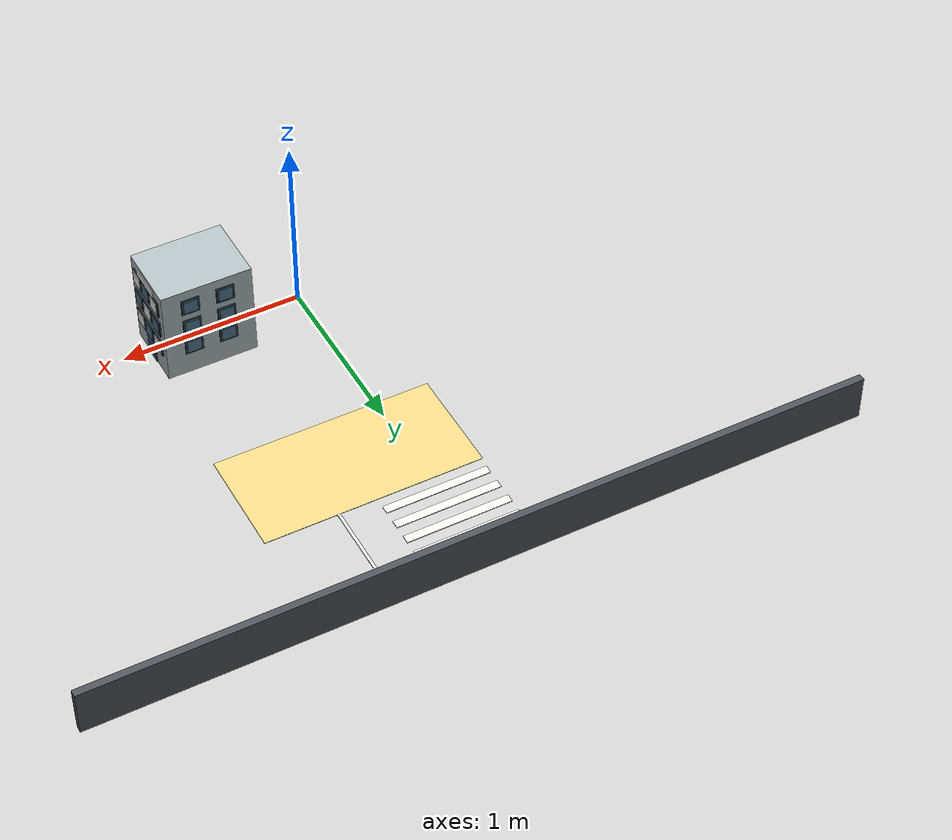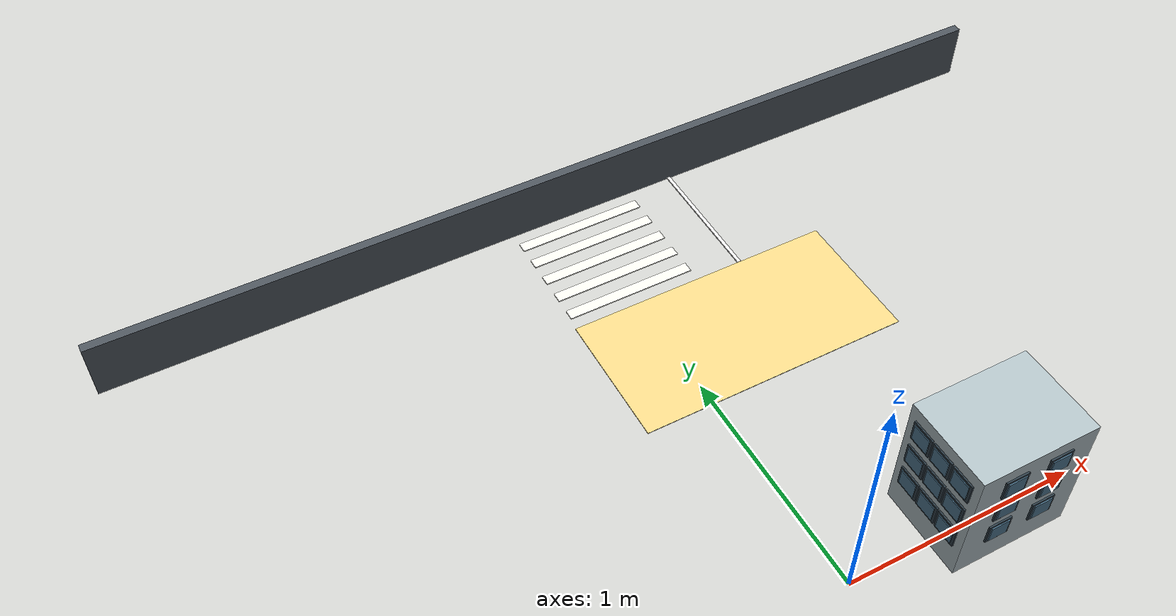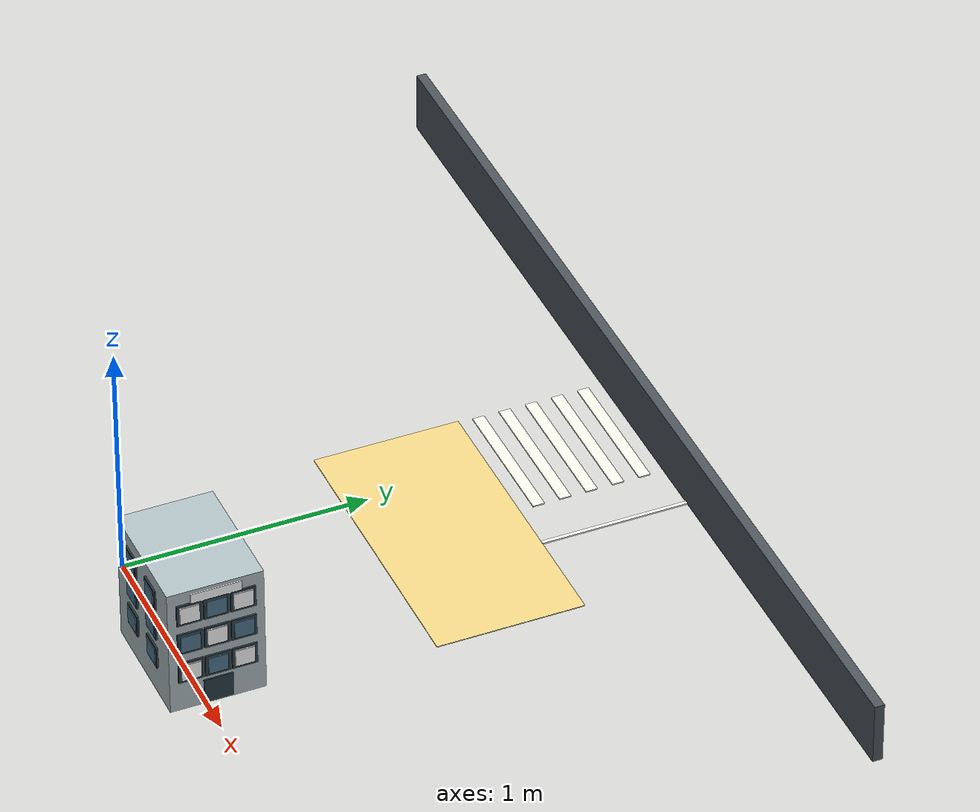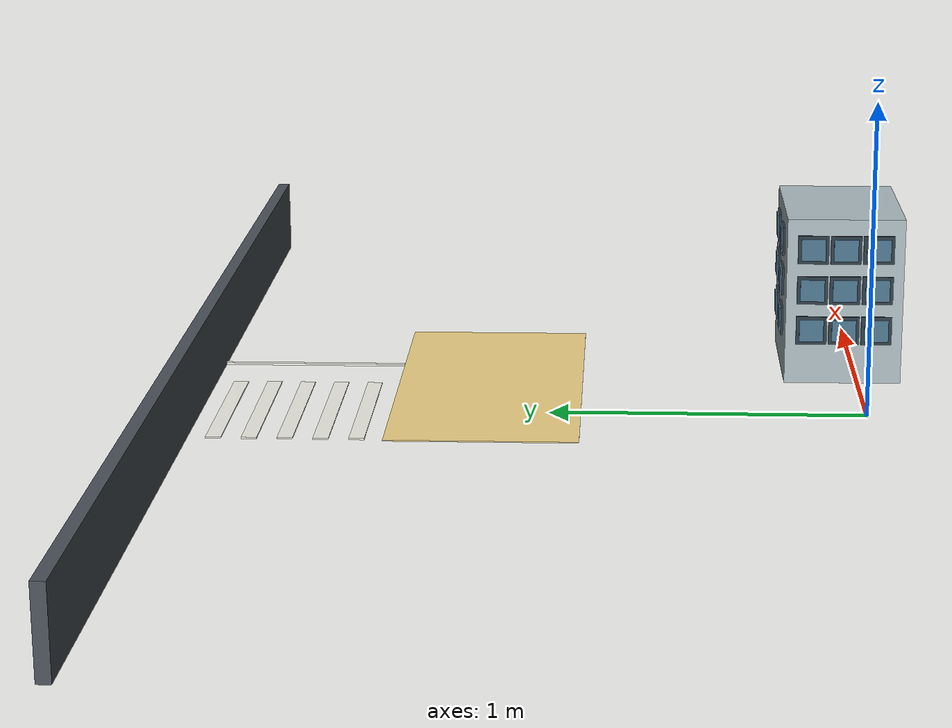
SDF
<sdf version="1.6">
 <world name="sq_community_4p2">
  <include><uri>model://sun</uri></include>
  <model name="sq4_zone_a_street">
   <static>true</static>
   <pose>0.3000 1.2000 0.0000 0 0 0.00000</pose>
   <link name="surface">
    <visual name="surface_vis">
     <pose>0.0000 0.0000 0.0018 0 0 0.00000</pose>
     <geometry><box><size>1.2000 0.6000 0.0035</size></box></geometry>
     <material>
      <ambient>0.9500 0.8400 0.5300 1.0000</ambient>
      <diffuse>0.9500 0.8400 0.5300 1.0000</diffuse>
     </material>
    </visual>
   </link>
  </model>
  <model name="sq4_boundary_north">
   <static>true</static>
   <pose>0.0000 2.1200 0.0000 0 0 0.00000</pose>
   <link name="wall">
    <visual name="wall_vis">
     <pose>0.0000 0.0000 0.1300 0 0 0.00000</pose>
     <geometry><box><size>4.2400 0.0400 0.2600</size></box></geometry>
     <material>
      <ambient>0.3000 0.3300 0.3600 1.0000</ambient>
      <diffuse>0.3000 0.3300 0.3600 1.0000</diffuse>
     </material>
    </visual>
    <collision name="wall_col">
     <pose>0.0000 0.0000 0.1300 0 0 0.00000</pose>
     <geometry><box><size>4.2400 0.0400 0.2600</size></box></geometry>
    </collision>
   </link>
  </model>
  <model name="sq4_crossing_upper_0">
   <static>true</static>
   <pose>0.0000 1.5800 0.0000 0 0 0.00000</pose>
   <link name="surface">
    <visual name="surface_vis">
     <pose>0.0000 0.0000 0.0025 0 0 0.00000</pose>
     <geometry><box><size>0.5800 0.0480 0.0050</size></box></geometry>
     <material>
      <ambient>0.9600 0.9600 0.9200 1.0000</ambient>
      <diffuse>0.9600 0.9600 0.9200 1.0000</diffuse>
     </material>
    </visual>
   </link>
  </model>
  <model name="sq4_crossing_upper_1">
   <static>true</static>
   <pose>0.0000 1.6900 0.0000 0 0 0.00000</pose>
   <link name="surface">
    <visual name="surface_vis">
     <pose>0.0000 0.0000 0.0025 0 0 0.00000</pose>
     <geometry><box><size>0.5800 0.0480 0.0050</size></box></geometry>
     <material>
      <ambient>0.9600 0.9600 0.9200 1.0000</ambient>
      <diffuse>0.9600 0.9600 0.9200 1.0000</diffuse>
     </material>
    </visual>
   </link>
  </model>
  <model name="sq4_crossing_upper_2">
   <static>true</static>
   <pose>0.0000 1.8000 0.0000 0 0 0.00000</pose>
   <link name="surface">
    <visual name="surface_vis">
     <pose>0.0000 0.0000 0.0025 0 0 0.00000</pose>
     <geometry><box><size>0.5800 0.0480 0.0050</size></box></geometry>
     <material>
      <ambient>0.9600 0.9600 0.9200 1.0000</ambient>
      <diffuse>0.9600 0.9600 0.9200 1.0000</diffuse>
     </material>
    </visual>
   </link>
  </model>
  <model name="sq4_crossing_upper_3">
   <static>true</static>
   <pose>0.0000 1.9100 0.0000 0 0 0.00000</pose>
   <link name="surface">
    <visual name="surface_vis">
     <pose>0.0000 0.0000 0.0025 0 0 0.00000</pose>
     <geometry><box><size>0.5800 0.0480 0.0050</size></box></geometry>
     <material>
      <ambient>0.9600 0.9600 0.9200 1.0000</ambient>
      <diffuse>0.9600 0.9600 0.9200 1.0000</diffuse>
     </material>
    </visual>
   </link>
  </model>
  <model name="sq4_crossing_upper_4">
   <static>true</static>
   <pose>0.0000 2.0200 0.0000 0 0 0.00000</pose>
   <link name="surface">
    <visual name="surface_vis">
     <pose>0.0000 0.0000 0.0025 0 0 0.00000</pose>
     <geometry><box><size>0.5800 0.0480 0.0050</size></box></geometry>
     <material>
      <ambient>0.9600 0.9600 0.9200 1.0000</ambient>
      <diffuse>0.9600 0.9600 0.9200 1.0000</diffuse>
     </material>
    </visual>
   </link>
  </model>
  <model name="sq4_stop_upper">
   <static>true</static>
   <pose>0.5000 1.8000 0.0000 0 0 0.00000</pose>
   <link name="surface">
    <visual name="surface_vis">
     <pose>0.0000 0.0000 0.0030 0 0 0.00000</pose>
     <geometry><box><size>0.0160 0.6000 0.0060</size></box></geometry>
     <material>
      <ambient>0.9800 0.9800 0.9600 1.0000</ambient>
      <diffuse>0.9800 0.9800 0.9600 1.0000</diffuse>
     </material>
    </visual>
   </link>
  </model>
  <model name="sq4_building_B">
   <static>true</static>
   <pose>0.6000 0.0500 0.0000 0 0 0.00000</pose>
   <link name="structure">
    <visual name="structure_vis">
     <pose>0.0000 0.0000 0.2750 0 0 0.00000</pose>
     <geometry><box><size>0.5000 0.3800 0.5500</size></box></geometry>
     <material>
      <ambient>0.6900 0.7500 0.7700 1.0000</ambient>
      <diffuse>0.6900 0.7500 0.7700 1.0000</diffuse>
     </material>
    </visual>
    <collision name="structure_col">
     <pose>0.0000 0.0000 0.2750 0 0 0.00000</pose>
     <geometry><box><size>0.5000 0.3800 0.5500</size></box></geometry>
    </collision>
   </link>
   <link name="nameplate">
    <visual name="nameplate_vis">
     <pose>0.2560 0.0000 0.5150 0 0 0.00000</pose>
     <geometry><box><size>0.0050 0.2000 0.0450</size></box></geometry>
     <material>
      <script>
       <uri>model://sq_textures/materials/scripts</uri>
       <uri>model://sq_textures/materials/textures</uri>
       <name>SQ_bldg_B</name>
      </script>
      <ambient>1 1 1 1</ambient>
      <diffuse>1 1 1 1</diffuse>
     </material>
    </visual>
   </link>
   <link name="entry_door">
    <visual name="entry_door_vis">
     <pose>0.2560 0.0000 0.0630 0 0 0.00000</pose>
     <geometry><box><size>0.0060 0.1150 0.1050</size></box></geometry>
     <material>
      <ambient>0.1600 0.2300 0.2800 1.0000</ambient>
      <diffuse>0.1600 0.2300 0.2800 1.0000</diffuse>
     </material>
    </visual>
   </link>
   <link name="window_f1_c1_frame">
    <visual name="window_f1_c1_frame_vis">
     <pose>0.2550 -0.1056 0.1800 0 0 0.00000</pose>
     <geometry><box><size>0.0070 0.1000 0.0930</size></box></geometry>
     <material>
      <ambient>0.1800 0.2400 0.2800 1.0000</ambient>
      <diffuse>0.1800 0.2400 0.2800 1.0000</diffuse>
     </material>
    </visual>
   </link>
   <link name="window_f1_c1_glass">
    <visual name="window_f1_c1_glass_vis">
     <pose>0.2590 -0.1056 0.1800 0 0 0.00000</pose>
     <geometry><box><size>0.0070 0.0780 0.0720</size></box></geometry>
     <material>
      <script>
       <uri>model://sq_textures/materials/scripts</uri>
       <uri>model://sq_textures/materials/textures</uri>
       <name>SQ_win_fire</name>
      </script>
      <ambient>1 1 1 1</ambient>
      <diffuse>1 1 1 1</diffuse>
     </material>
    </visual>
   </link>
   <link name="window_f1_c2_frame">
    <visual name="window_f1_c2_frame_vis">
     <pose>0.2550 0.0000 0.1800 0 0 0.00000</pose>
     <geometry><box><size>0.0070 0.1000 0.0930</size></box></geometry>
     <material>
      <ambient>0.1800 0.2400 0.2800 1.0000</ambient>
      <diffuse>0.1800 0.2400 0.2800 1.0000</diffuse>
     </material>
    </visual>
   </link>
   <link name="window_f1_c2_glass">
    <visual name="window_f1_c2_glass_vis">
     <pose>0.2590 0.0000 0.1800 0 0 0.00000</pose>
     <geometry><box><size>0.0070 0.0780 0.0720</size></box></geometry>
     <material>
      <ambient>0.3100 0.4700 0.5700 1.0000</ambient>
      <diffuse>0.3100 0.4700 0.5700 1.0000</diffuse>
     </material>
    </visual>
   </link>
   <link name="window_f1_c3_frame">
    <visual name="window_f1_c3_frame_vis">
     <pose>0.2550 0.1056 0.1800 0 0 0.00000</pose>
     <geometry><box><size>0.0070 0.1000 0.0930</size></box></geometry>
     <material>
      <ambient>0.1800 0.2400 0.2800 1.0000</ambient>
      <diffuse>0.1800 0.2400 0.2800 1.0000</diffuse>
     </material>
    </visual>
   </link>
   <link name="window_f1_c3_glass">
    <visual name="window_f1_c3_glass_vis">
     <pose>0.2590 0.1056 0.1800 0 0 0.00000</pose>
     <geometry><box><size>0.0070 0.0780 0.0720</size></box></geometry>
     <material>
      <script>
       <uri>model://sq_textures/materials/scripts</uri>
       <uri>model://sq_textures/materials/textures</uri>
       <name>SQ_win_fire</name>
      </script>
      <ambient>1 1 1 1</ambient>
      <diffuse>1 1 1 1</diffuse>
     </material>
    </visual>
   </link>
   <link name="window_f2_c1_frame">
    <visual name="window_f2_c1_frame_vis">
     <pose>0.2550 -0.1056 0.3150 0 0 0.00000</pose>
     <geometry><box><size>0.0070 0.1000 0.0930</size></box></geometry>
     <material>
      <ambient>0.1800 0.2400 0.2800 1.0000</ambient>
      <diffuse>0.1800 0.2400 0.2800 1.0000</diffuse>
     </material>
    </visual>
   </link>
   <link name="window_f2_c1_glass">
    <visual name="window_f2_c1_glass_vis">
     <pose>0.2590 -0.1056 0.3150 0 0 0.00000</pose>
     <geometry><box><size>0.0070 0.0780 0.0720</size></box></geometry>
     <material>
      <ambient>0.3100 0.4700 0.5700 1.0000</ambient>
      <diffuse>0.3100 0.4700 0.5700 1.0000</diffuse>
     </material>
    </visual>
   </link>
   <link name="window_f2_c2_frame">
    <visual name="window_f2_c2_frame_vis">
     <pose>0.2550 0.0000 0.3150 0 0 0.00000</pose>
     <geometry><box><size>0.0070 0.1000 0.0930</size></box></geometry>
     <material>
      <ambient>0.1800 0.2400 0.2800 1.0000</ambient>
      <diffuse>0.1800 0.2400 0.2800 1.0000</diffuse>
     </material>
    </visual>
   </link>
   <link name="window_f2_c2_glass">
    <visual name="window_f2_c2_glass_vis">
     <pose>0.2590 0.0000 0.3150 0 0 0.00000</pose>
     <geometry><box><size>0.0070 0.0780 0.0720</size></box></geometry>
     <material>
      <script>
       <uri>model://sq_textures/materials/scripts</uri>
       <uri>model://sq_textures/materials/textures</uri>
       <name>SQ_win_fire</name>
      </script>
      <ambient>1 1 1 1</ambient>
      <diffuse>1 1 1 1</diffuse>
     </material>
    </visual>
   </link>
   <link name="window_f2_c3_frame">
    <visual name="window_f2_c3_frame_vis">
     <pose>0.2550 0.1056 0.3150 0 0 0.00000</pose>
     <geometry><box><size>0.0070 0.1000 0.0930</size></box></geometry>
     <material>
      <ambient>0.1800 0.2400 0.2800 1.0000</ambient>
      <diffuse>0.1800 0.2400 0.2800 1.0000</diffuse>
     </material>
    </visual>
   </link>
   <link name="window_f2_c3_glass">
    <visual name="window_f2_c3_glass_vis">
     <pose>0.2590 0.1056 0.3150 0 0 0.00000</pose>
     <geometry><box><size>0.0070 0.0780 0.0720</size></box></geometry>
     <material>
      <ambient>0.3100 0.4700 0.5700 1.0000</ambient>
      <diffuse>0.3100 0.4700 0.5700 1.0000</diffuse>
     </material>
    </visual>
   </link>
   <link name="window_f3_c1_frame">
    <visual name="window_f3_c1_frame_vis">
     <pose>0.2550 -0.1056 0.4500 0 0 0.00000</pose>
     <geometry><box><size>0.0070 0.1000 0.0930</size></box></geometry>
     <material>
      <ambient>0.1800 0.2400 0.2800 1.0000</ambient>
      <diffuse>0.1800 0.2400 0.2800 1.0000</diffuse>
     </material>
    </visual>
   </link>
   <link name="window_f3_c1_glass">
    <visual name="window_f3_c1_glass_vis">
     <pose>0.2590 -0.1056 0.4500 0 0 0.00000</pose>
     <geometry><box><size>0.0070 0.0780 0.0720</size></box></geometry>
     <material>
      <script>
       <uri>model://sq_textures/materials/scripts</uri>
       <uri>model://sq_textures/materials/textures</uri>
       <name>SQ_win_fire</name>
      </script>
      <ambient>1 1 1 1</ambient>
      <diffuse>1 1 1 1</diffuse>
     </material>
    </visual>
   </link>
   <link name="window_f3_c2_frame">
    <visual name="window_f3_c2_frame_vis">
     <pose>0.2550 0.0000 0.4500 0 0 0.00000</pose>
     <geometry><box><size>0.0070 0.1000 0.0930</size></box></geometry>
     <material>
      <ambient>0.1800 0.2400 0.2800 1.0000</ambient>
      <diffuse>0.1800 0.2400 0.2800 1.0000</diffuse>
     </material>
    </visual>
   </link>
   <link name="window_f3_c2_glass">
    <visual name="window_f3_c2_glass_vis">
     <pose>0.2590 0.0000 0.4500 0 0 0.00000</pose>
     <geometry><box><size>0.0070 0.0780 0.0720</size></box></geometry>
     <material>
      <ambient>0.3100 0.4700 0.5700 1.0000</ambient>
      <diffuse>0.3100 0.4700 0.5700 1.0000</diffuse>
     </material>
    </visual>
   </link>
   <link name="window_f3_c3_frame">
    <visual name="window_f3_c3_frame_vis">
     <pose>0.2550 0.1056 0.4500 0 0 0.00000</pose>
     <geometry><box><size>0.0070 0.1000 0.0930</size></box></geometry>
     <material>
      <ambient>0.1800 0.2400 0.2800 1.0000</ambient>
      <diffuse>0.1800 0.2400 0.2800 1.0000</diffuse>
     </material>
    </visual>
   </link>
   <link name="window_f3_c3_glass">
    <visual name="window_f3_c3_glass_vis">
     <pose>0.2590 0.1056 0.4500 0 0 0.00000</pose>
     <geometry><box><size>0.0070 0.0780 0.0720</size></box></geometry>
     <material>
      <script>
       <uri>model://sq_textures/materials/scripts</uri>
       <uri>model://sq_textures/materials/textures</uri>
       <name>SQ_win_fire</name>
      </script>
      <ambient>1 1 1 1</ambient>
      <diffuse>1 1 1 1</diffuse>
     </material>
    </visual>
   </link>
   <link name="side_north_f1_c1_frame">
    <visual name="side_north_f1_c1_frame_vis">
     <pose>-0.0962 0.1950 0.1800 0 0 0.00000</pose>
     <geometry><box><size>0.1000 0.0070 0.0930</size></box></geometry>
     <material>
      <ambient>0.1800 0.2400 0.2800 1.0000</ambient>
      <diffuse>0.1800 0.2400 0.2800 1.0000</diffuse>
     </material>
    </visual>
   </link>
   <link name="side_north_f1_c1_glass">
    <visual name="side_north_f1_c1_glass_vis">
     <pose>-0.0962 0.1990 0.1800 0 0 0.00000</pose>
     <geometry><box><size>0.0780 0.0070 0.0720</size></box></geometry>
     <material>
      <ambient>0.3100 0.4700 0.5700 1.0000</ambient>
      <diffuse>0.3100 0.4700 0.5700 1.0000</diffuse>
     </material>
    </visual>
   </link>
   <link name="side_north_f1_c2_frame">
    <visual name="side_north_f1_c2_frame_vis">
     <pose>0.0962 0.1950 0.1800 0 0 0.00000</pose>
     <geometry><box><size>0.1000 0.0070 0.0930</size></box></geometry>
     <material>
      <ambient>0.1800 0.2400 0.2800 1.0000</ambient>
      <diffuse>0.1800 0.2400 0.2800 1.0000</diffuse>
     </material>
    </visual>
   </link>
   <link name="side_north_f1_c2_glass">
    <visual name="side_north_f1_c2_glass_vis">
     <pose>0.0962 0.1990 0.1800 0 0 0.00000</pose>
     <geometry><box><size>0.0780 0.0070 0.0720</size></box></geometry>
     <material>
      <ambient>0.3100 0.4700 0.5700 1.0000</ambient>
      <diffuse>0.3100 0.4700 0.5700 1.0000</diffuse>
     </material>
    </visual>
   </link>
   <link name="side_north_f2_c1_frame">
    <visual name="side_north_f2_c1_frame_vis">
     <pose>-0.0962 0.1950 0.3150 0 0 0.00000</pose>
     <geometry><box><size>0.1000 0.0070 0.0930</size></box></geometry>
     <material>
      <ambient>0.1800 0.2400 0.2800 1.0000</ambient>
      <diffuse>0.1800 0.2400 0.2800 1.0000</diffuse>
     </material>
    </visual>
   </link>
   <link name="side_north_f2_c1_glass">
    <visual name="side_north_f2_c1_glass_vis">
     <pose>-0.0962 0.1990 0.3150 0 0 0.00000</pose>
     <geometry><box><size>0.0780 0.0070 0.0720</size></box></geometry>
     <material>
      <ambient>0.3100 0.4700 0.5700 1.0000</ambient>
      <diffuse>0.3100 0.4700 0.5700 1.0000</diffuse>
     </material>
    </visual>
   </link>
   <link name="side_north_f2_c2_frame">
    <visual name="side_north_f2_c2_frame_vis">
     <pose>0.0962 0.1950 0.3150 0 0 0.00000</pose>
     <geometry><box><size>0.1000 0.0070 0.0930</size></box></geometry>
     <material>
      <ambient>0.1800 0.2400 0.2800 1.0000</ambient>
      <diffuse>0.1800 0.2400 0.2800 1.0000</diffuse>
     </material>
    </visual>
   </link>
   <link name="side_north_f2_c2_glass">
    <visual name="side_north_f2_c2_glass_vis">
     <pose>0.0962 0.1990 0.3150 0 0 0.00000</pose>
     <geometry><box><size>0.0780 0.0070 0.0720</size></box></geometry>
     <material>
      <ambient>0.3100 0.4700 0.5700 1.0000</ambient>
      <diffuse>0.3100 0.4700 0.5700 1.0000</diffuse>
     </material>
    </visual>
   </link>
   <link name="side_north_f3_c1_frame">
    <visual name="side_north_f3_c1_frame_vis">
     <pose>-0.0962 0.1950 0.4500 0 0 0.00000</pose>
     <geometry><box><size>0.1000 0.0070 0.0930</size></box></geometry>
     <material>
      <ambient>0.1800 0.2400 0.2800 1.0000</ambient>
      <diffuse>0.1800 0.2400 0.2800 1.0000</diffuse>
     </material>
    </visual>
   </link>
   <link name="side_north_f3_c1_glass">
    <visual name="side_north_f3_c1_glass_vis">
     <pose>-0.0962 0.1990 0.4500 0 0 0.00000</pose>
     <geometry><box><size>0.0780 0.0070 0.0720</size></box></geometry>
     <material>
      <ambient>0.3100 0.4700 0.5700 1.0000</ambient>
      <diffuse>0.3100 0.4700 0.5700 1.0000</diffuse>
     </material>
    </visual>
   </link>
   <link name="side_north_f3_c2_frame">
    <visual name="side_north_f3_c2_frame_vis">
     <pose>0.0962 0.1950 0.4500 0 0 0.00000</pose>
     <geometry><box><size>0.1000 0.0070 0.0930</size></box></geometry>
     <material>
      <ambient>0.1800 0.2400 0.2800 1.0000</ambient>
      <diffuse>0.1800 0.2400 0.2800 1.0000</diffuse>
     </material>
    </visual>
   </link>
   <link name="side_north_f3_c2_glass">
    <visual name="side_north_f3_c2_glass_vis">
     <pose>0.0962 0.1990 0.4500 0 0 0.00000</pose>
     <geometry><box><size>0.0780 0.0070 0.0720</size></box></geometry>
     <material>
      <ambient>0.3100 0.4700 0.5700 1.0000</ambient>
      <diffuse>0.3100 0.4700 0.5700 1.0000</diffuse>
     </material>
    </visual>
   </link>
   <link name="side_south_f1_c1_frame">
    <visual name="side_south_f1_c1_frame_vis">
     <pose>-0.0962 -0.1950 0.1800 0 0 0.00000</pose>
     <geometry><box><size>0.1000 0.0070 0.0930</size></box></geometry>
     <material>
      <ambient>0.1800 0.2400 0.2800 1.0000</ambient>
      <diffuse>0.1800 0.2400 0.2800 1.0000</diffuse>
     </material>
    </visual>
   </link>
   <link name="side_south_f1_c1_glass">
    <visual name="side_south_f1_c1_glass_vis">
     <pose>-0.0962 -0.1990 0.1800 0 0 0.00000</pose>
     <geometry><box><size>0.0780 0.0070 0.0720</size></box></geometry>
     <material>
      <ambient>0.3100 0.4700 0.5700 1.0000</ambient>
      <diffuse>0.3100 0.4700 0.5700 1.0000</diffuse>
     </material>
    </visual>
   </link>
   <link name="side_south_f1_c2_frame">
    <visual name="side_south_f1_c2_frame_vis">
     <pose>0.0962 -0.1950 0.1800 0 0 0.00000</pose>
     <geometry><box><size>0.1000 0.0070 0.0930</size></box></geometry>
     <material>
      <ambient>0.1800 0.2400 0.2800 1.0000</ambient>
      <diffuse>0.1800 0.2400 0.2800 1.0000</diffuse>
     </material>
    </visual>
   </link>
   <link name="side_south_f1_c2_glass">
    <visual name="side_south_f1_c2_glass_vis">
     <pose>0.0962 -0.1990 0.1800 0 0 0.00000</pose>
     <geometry><box><size>0.0780 0.0070 0.0720</size></box></geometry>
     <material>
      <ambient>0.3100 0.4700 0.5700 1.0000</ambient>
      <diffuse>0.3100 0.4700 0.5700 1.0000</diffuse>
     </material>
    </visual>
   </link>
   <link name="side_south_f2_c1_frame">
    <visual name="side_south_f2_c1_frame_vis">
     <pose>-0.0962 -0.1950 0.3150 0 0 0.00000</pose>
     <geometry><box><size>0.1000 0.0070 0.0930</size></box></geometry>
     <material>
      <ambient>0.1800 0.2400 0.2800 1.0000</ambient>
      <diffuse>0.1800 0.2400 0.2800 1.0000</diffuse>
     </material>
    </visual>
   </link>
   <link name="side_south_f2_c1_glass">
    <visual name="side_south_f2_c1_glass_vis">
     <pose>-0.0962 -0.1990 0.3150 0 0 0.00000</pose>
     <geometry><box><size>0.0780 0.0070 0.0720</size></box></geometry>
     <material>
      <ambient>0.3100 0.4700 0.5700 1.0000</ambient>
      <diffuse>0.3100 0.4700 0.5700 1.0000</diffuse>
     </material>
    </visual>
   </link>
   <link name="side_south_f2_c2_frame">
    <visual name="side_south_f2_c2_frame_vis">
     <pose>0.0962 -0.1950 0.3150 0 0 0.00000</pose>
     <geometry><box><size>0.1000 0.0070 0.0930</size></box></geometry>
     <material>
      <ambient>0.1800 0.2400 0.2800 1.0000</ambient>
      <diffuse>0.1800 0.2400 0.2800 1.0000</diffuse>
     </material>
    </visual>
   </link>
   <link name="side_south_f2_c2_glass">
    <visual name="side_south_f2_c2_glass_vis">
     <pose>0.0962 -0.1990 0.3150 0 0 0.00000</pose>
     <geometry><box><size>0.0780 0.0070 0.0720</size></box></geometry>
     <material>
      <ambient>0.3100 0.4700 0.5700 1.0000</ambient>
      <diffuse>0.3100 0.4700 0.5700 1.0000</diffuse>
     </material>
    </visual>
   </link>
   <link name="side_south_f3_c1_frame">
    <visual name="side_south_f3_c1_frame_vis">
     <pose>-0.0962 -0.1950 0.4500 0 0 0.00000</pose>
     <geometry><box><size>0.1000 0.0070 0.0930</size></box></geometry>
     <material>
      <ambient>0.1800 0.2400 0.2800 1.0000</ambient>
      <diffuse>0.1800 0.2400 0.2800 1.0000</diffuse>
     </material>
    </visual>
   </link>
   <link name="side_south_f3_c1_glass">
    <visual name="side_south_f3_c1_glass_vis">
     <pose>-0.0962 -0.1990 0.4500 0 0 0.00000</pose>
     <geometry><box><size>0.0780 0.0070 0.0720</size></box></geometry>
     <material>
      <ambient>0.3100 0.4700 0.5700 1.0000</ambient>
      <diffuse>0.3100 0.4700 0.5700 1.0000</diffuse>
     </material>
    </visual>
   </link>
   <link name="side_south_f3_c2_frame">
    <visual name="side_south_f3_c2_frame_vis">
     <pose>0.0962 -0.1950 0.4500 0 0 0.00000</pose>
     <geometry><box><size>0.1000 0.0070 0.0930</size></box></geometry>
     <material>
      <ambient>0.1800 0.2400 0.2800 1.0000</ambient>
      <diffuse>0.1800 0.2400 0.2800 1.0000</diffuse>
     </material>
    </visual>
   </link>
   <link name="side_south_f3_c2_glass">
    <visual name="side_south_f3_c2_glass_vis">
     <pose>0.0962 -0.1990 0.4500 0 0 0.00000</pose>
     <geometry><box><size>0.0780 0.0070 0.0720</size></box></geometry>
     <material>
      <ambient>0.3100 0.4700 0.5700 1.0000</ambient>
      <diffuse>0.3100 0.4700 0.5700 1.0000</diffuse>
     </material>
    </visual>
   </link>
   <link name="rear_f1_c1_frame">
    <visual name="rear_f1_c1_frame_vis">
     <pose>-0.2550 -0.1056 0.1800 0 0 0.00000</pose>
     <geometry><box><size>0.0070 0.1000 0.0930</size></box></geometry>
     <material>
      <ambient>0.1800 0.2400 0.2800 1.0000</ambient>
      <diffuse>0.1800 0.2400 0.2800 1.0000</diffuse>
     </material>
    </visual>
   </link>
   <link name="rear_f1_c1_glass">
    <visual name="rear_f1_c1_glass_vis">
     <pose>-0.2590 -0.1056 0.1800 0 0 0.00000</pose>
     <geometry><box><size>0.0070 0.0780 0.0720</size></box></geometry>
     <material>
      <ambient>0.3100 0.4700 0.5700 1.0000</ambient>
      <diffuse>0.3100 0.4700 0.5700 1.0000</diffuse>
     </material>
    </visual>
   </link>
   <link name="rear_f1_c2_frame">
    <visual name="rear_f1_c2_frame_vis">
     <pose>-0.2550 0.0000 0.1800 0 0 0.00000</pose>
     <geometry><box><size>0.0070 0.1000 0.0930</size></box></geometry>
     <material>
      <ambient>0.1800 0.2400 0.2800 1.0000</ambient>
      <diffuse>0.1800 0.2400 0.2800 1.0000</diffuse>
     </material>
    </visual>
   </link>
   <link name="rear_f1_c2_glass">
    <visual name="rear_f1_c2_glass_vis">
     <pose>-0.2590 0.0000 0.1800 0 0 0.00000</pose>
     <geometry><box><size>0.0070 0.0780 0.0720</size></box></geometry>
     <material>
      <ambient>0.3100 0.4700 0.5700 1.0000</ambient>
      <diffuse>0.3100 0.4700 0.5700 1.0000</diffuse>
     </material>
    </visual>
   </link>
   <link name="rear_f1_c3_frame">
    <visual name="rear_f1_c3_frame_vis">
     <pose>-0.2550 0.1056 0.1800 0 0 0.00000</pose>
     <geometry><box><size>0.0070 0.1000 0.0930</size></box></geometry>
     <material>
      <ambient>0.1800 0.2400 0.2800 1.0000</ambient>
      <diffuse>0.1800 0.2400 0.2800 1.0000</diffuse>
     </material>
    </visual>
   </link>
   <link name="rear_f1_c3_glass">
    <visual name="rear_f1_c3_glass_vis">
     <pose>-0.2590 0.1056 0.1800 0 0 0.00000</pose>
     <geometry><box><size>0.0070 0.0780 0.0720</size></box></geometry>
     <material>
      <ambient>0.3100 0.4700 0.5700 1.0000</ambient>
      <diffuse>0.3100 0.4700 0.5700 1.0000</diffuse>
     </material>
    </visual>
   </link>
   <link name="rear_f2_c1_frame">
    <visual name="rear_f2_c1_frame_vis">
     <pose>-0.2550 -0.1056 0.3150 0 0 0.00000</pose>
     <geometry><box><size>0.0070 0.1000 0.0930</size></box></geometry>
     <material>
      <ambient>0.1800 0.2400 0.2800 1.0000</ambient>
      <diffuse>0.1800 0.2400 0.2800 1.0000</diffuse>
     </material>
    </visual>
   </link>
   <link name="rear_f2_c1_glass">
    <visual name="rear_f2_c1_glass_vis">
     <pose>-0.2590 -0.1056 0.3150 0 0 0.00000</pose>
     <geometry><box><size>0.0070 0.0780 0.0720</size></box></geometry>
     <material>
      <ambient>0.3100 0.4700 0.5700 1.0000</ambient>
      <diffuse>0.3100 0.4700 0.5700 1.0000</diffuse>
     </material>
    </visual>
   </link>
   <link name="rear_f2_c2_frame">
    <visual name="rear_f2_c2_frame_vis">
     <pose>-0.2550 0.0000 0.3150 0 0 0.00000</pose>
     <geometry><box><size>0.0070 0.1000 0.0930</size></box></geometry>
     <material>
      <ambient>0.1800 0.2400 0.2800 1.0000</ambient>
      <diffuse>0.1800 0.2400 0.2800 1.0000</diffuse>
     </material>
    </visual>
   </link>
   <link name="rear_f2_c2_glass">
    <visual name="rear_f2_c2_glass_vis">
     <pose>-0.2590 0.0000 0.3150 0 0 0.00000</pose>
     <geometry><box><size>0.0070 0.0780 0.0720</size></box></geometry>
     <material>
      <ambient>0.3100 0.4700 0.5700 1.0000</ambient>
      <diffuse>0.3100 0.4700 0.5700 1.0000</diffuse>
     </material>
    </visual>
   </link>
   <link name="rear_f2_c3_frame">
    <visual name="rear_f2_c3_frame_vis">
     <pose>-0.2550 0.1056 0.3150 0 0 0.00000</pose>
     <geometry><box><size>0.0070 0.1000 0.0930</size></box></geometry>
     <material>
      <ambient>0.1800 0.2400 0.2800 1.0000</ambient>
      <diffuse>0.1800 0.2400 0.2800 1.0000</diffuse>
     </material>
    </visual>
   </link>
   <link name="rear_f2_c3_glass">
    <visual name="rear_f2_c3_glass_vis">
     <pose>-0.2590 0.1056 0.3150 0 0 0.00000</pose>
     <geometry><box><size>0.0070 0.0780 0.0720</size></box></geometry>
     <material>
      <ambient>0.3100 0.4700 0.5700 1.0000</ambient>
      <diffuse>0.3100 0.4700 0.5700 1.0000</diffuse>
     </material>
    </visual>
   </link>
   <link name="rear_f3_c1_frame">
    <visual name="rear_f3_c1_frame_vis">
     <pose>-0.2550 -0.1056 0.4500 0 0 0.00000</pose>
     <geometry><box><size>0.0070 0.1000 0.0930</size></box></geometry>
     <material>
      <ambient>0.1800 0.2400 0.2800 1.0000</ambient>
      <diffuse>0.1800 0.2400 0.2800 1.0000</diffuse>
     </material>
    </visual>
   </link>
   <link name="rear_f3_c1_glass">
    <visual name="rear_f3_c1_glass_vis">
     <pose>-0.2590 -0.1056 0.4500 0 0 0.00000</pose>
     <geometry><box><size>0.0070 0.0780 0.0720</size></box></geometry>
     <material>
      <ambient>0.3100 0.4700 0.5700 1.0000</ambient>
      <diffuse>0.3100 0.4700 0.5700 1.0000</diffuse>
     </material>
    </visual>
   </link>
   <link name="rear_f3_c2_frame">
    <visual name="rear_f3_c2_frame_vis">
     <pose>-0.2550 0.0000 0.4500 0 0 0.00000</pose>
     <geometry><box><size>0.0070 0.1000 0.0930</size></box></geometry>
     <material>
      <ambient>0.1800 0.2400 0.2800 1.0000</ambient>
      <diffuse>0.1800 0.2400 0.2800 1.0000</diffuse>
     </material>
    </visual>
   </link>
   <link name="rear_f3_c2_glass">
    <visual name="rear_f3_c2_glass_vis">
     <pose>-0.2590 0.0000 0.4500 0 0 0.00000</pose>
     <geometry><box><size>0.0070 0.0780 0.0720</size></box></geometry>
     <material>
      <ambient>0.3100 0.4700 0.5700 1.0000</ambient>
      <diffuse>0.3100 0.4700 0.5700 1.0000</diffuse>
     </material>
    </visual>
   </link>
   <link name="rear_f3_c3_frame">
    <visual name="rear_f3_c3_frame_vis">
     <pose>-0.2550 0.1056 0.4500 0 0 0.00000</pose>
     <geometry><box><size>0.0070 0.1000 0.0930</size></box></geometry>
     <material>
      <ambient>0.1800 0.2400 0.2800 1.0000</ambient>
      <diffuse>0.1800 0.2400 0.2800 1.0000</diffuse>
     </material>
    </visual>
   </link>
   <link name="rear_f3_c3_glass">
    <visual name="rear_f3_c3_glass_vis">
     <pose>-0.2590 0.1056 0.4500 0 0 0.00000</pose>
     <geometry><box><size>0.0070 0.0780 0.0720</size></box></geometry>
     <material>
      <ambient>0.3100 0.4700 0.5700 1.0000</ambient>
      <diffuse>0.3100 0.4700 0.5700 1.0000</diffuse>
     </material>
    </visual>
   </link>
  </model>
 </world>
</sdf>
